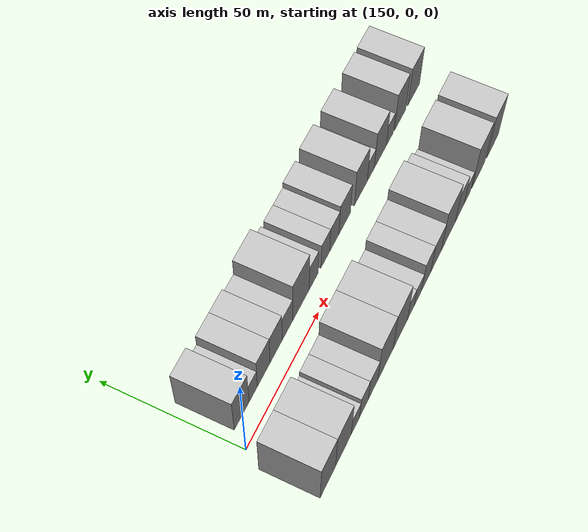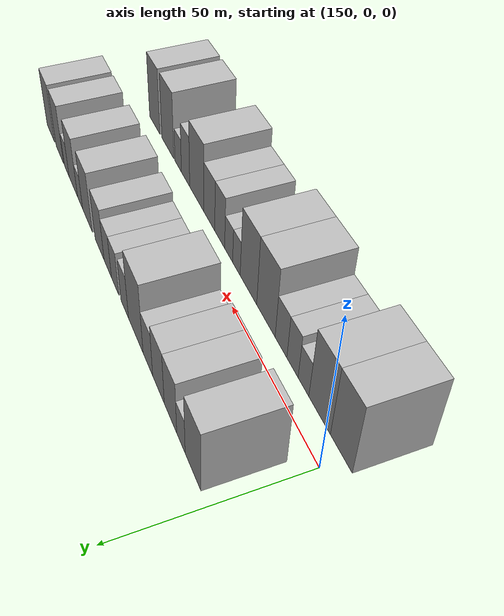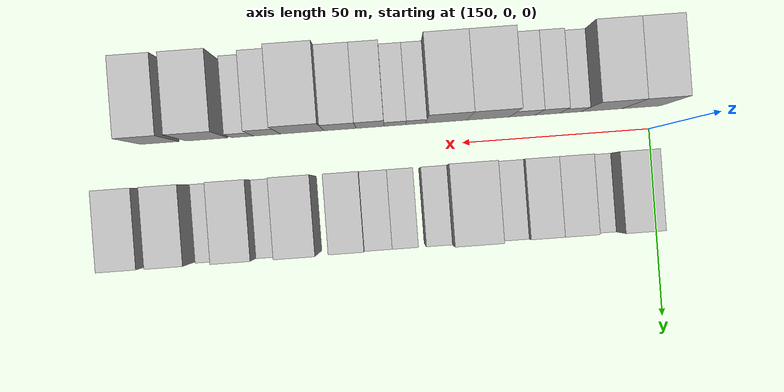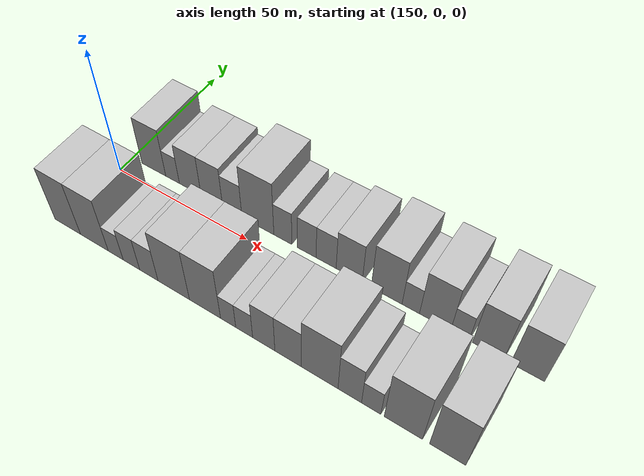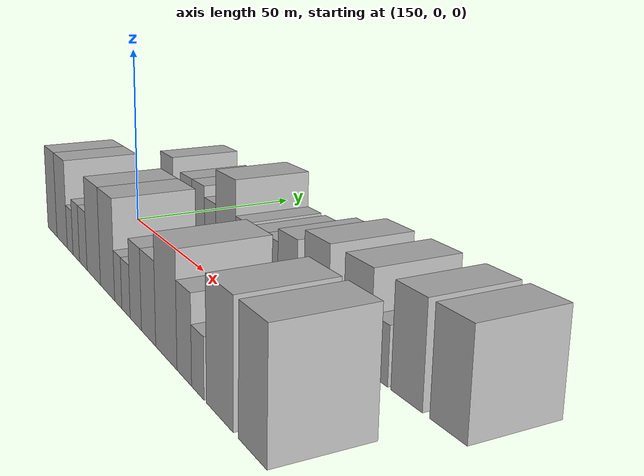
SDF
<sdf version="1.6">
 <world name="default">
  <model name="building_16">
   <static>1</static>
   <pose>158.8875 16.0000 0 0.000000 0.000000 1.570796</pose>
   <link name="link">
    <pose>0 0 10.50 0 0 0</pose>
    <collision name="collision"><geometry><box><size>20.0000 9.8371 21.0000</size></box></geometry></collision>
    <visual name="visual">
     <cast_shadows>0</cast_shadows>
     <geometry><box><size>20.0000 9.8371 21.0000</size></box></geometry>
     <material>
      <script>
       <uri>model://HANNAS_wall/materials/scripts</uri>
       <uri>model://HANNAS_wall/materials/textures</uri>
       <name>vrc/HANNAS_wall</name>
      </script>
     </material>
    </visual>
   </link>
  </model>
  <model name="building_17">
   <static>1</static>
   <pose>166.5775 16.0000 0 0.000000 0.000000 1.570796</pose>
   <link name="link">
    <pose>0 0 6.00 0 0 0</pose>
    <collision name="collision"><geometry><box><size>20.0000 5.5429 12.0000</size></box></geometry></collision>
    <visual name="visual">
     <cast_shadows>0</cast_shadows>
     <geometry><box><size>20.0000 5.5429 12.0000</size></box></geometry>
     <material>
      <script>
       <uri>model://HANNAS_wall/materials/scripts</uri>
       <uri>model://HANNAS_wall/materials/textures</uri>
       <name>vrc/HANNAS_wall</name>
      </script>
     </material>
    </visual>
   </link>
  </model>
  <model name="building_18">
   <static>1</static>
   <pose>173.6655 16.0000 0 0.000000 0.000000 1.570796</pose>
   <link name="link">
    <pose>0 0 9.00 0 0 0</pose>
    <collision name="collision"><geometry><box><size>20.0000 8.6331 18.0000</size></box></geometry></collision>
    <visual name="visual">
     <cast_shadows>0</cast_shadows>
     <geometry><box><size>20.0000 8.6331 18.0000</size></box></geometry>
     <material>
      <script>
       <uri>model://HANNAS_wall/materials/scripts</uri>
       <uri>model://HANNAS_wall/materials/textures</uri>
       <name>vrc/HANNAS_wall</name>
      </script>
     </material>
    </visual>
   </link>
  </model>
  <model name="building_19">
   <static>1</static>
   <pose>182.2064 16.0000 0 0.000000 0.000000 1.570796</pose>
   <link name="link">
    <pose>0 0 9.00 0 0 0</pose>
    <collision name="collision"><geometry><box><size>20.0000 8.4489 18.0000</size></box></geometry></collision>
    <visual name="visual">
     <cast_shadows>0</cast_shadows>
     <geometry><box><size>20.0000 8.4489 18.0000</size></box></geometry>
     <material>
      <script>
       <uri>model://HANNAS_wall/materials/scripts</uri>
       <uri>model://HANNAS_wall/materials/textures</uri>
       <name>vrc/HANNAS_wall</name>
      </script>
     </material>
    </visual>
   </link>
  </model>
  <model name="building_20">
   <static>1</static>
   <pose>190.1154 16.0000 0 0.000000 0.000000 1.570796</pose>
   <link name="link">
    <pose>0 0 7.50 0 0 0</pose>
    <collision name="collision"><geometry><box><size>20.0000 7.3691 15.0000</size></box></geometry></collision>
    <visual name="visual">
     <cast_shadows>0</cast_shadows>
     <geometry><box><size>20.0000 7.3691 15.0000</size></box></geometry>
     <material>
      <script>
       <uri>model://HANNAS_wall/materials/scripts</uri>
       <uri>model://HANNAS_wall/materials/textures</uri>
       <name>vrc/HANNAS_wall</name>
      </script>
     </material>
    </visual>
   </link>
  </model>
  <model name="building_21">
   <static>1</static>
   <pose>199.7422 16.0000 0 0.000000 0.000000 1.570796</pose>
   <link name="link">
    <pose>0 0 12.00 0 0 0</pose>
    <collision name="collision"><geometry><box><size>20.0000 11.8844 24.0000</size></box></geometry></collision>
    <visual name="visual">
     <cast_shadows>0</cast_shadows>
     <geometry><box><size>20.0000 11.8844 24.0000</size></box></geometry>
     <material>
      <script>
       <uri>model://HANNAS_wall/materials/scripts</uri>
       <uri>model://HANNAS_wall/materials/textures</uri>
       <name>vrc/HANNAS_wall</name>
      </script>
     </material>
    </visual>
   </link>
  </model>
  <model name="building_22">
   <static>1</static>
   <pose>208.9534 16.0000 0 0.000000 0.000000 1.570796</pose>
   <link name="link">
    <pose>0 0 7.50 0 0 0</pose>
    <collision name="collision"><geometry><box><size>20.0000 6.5379 15.0000</size></box></geometry></collision>
    <visual name="visual">
     <cast_shadows>0</cast_shadows>
     <geometry><box><size>20.0000 6.5379 15.0000</size></box></geometry>
     <material>
      <script>
       <uri>model://HANNAS_wall/materials/scripts</uri>
       <uri>model://HANNAS_wall/materials/textures</uri>
       <name>vrc/HANNAS_wall</name>
      </script>
     </material>
    </visual>
   </link>
  </model>
  <model name="building_23">
   <static>1</static>
   <pose>217.5202 16.0000 0 0.000000 0.000000 1.570796</pose>
   <link name="link">
    <pose>0 0 7.50 0 0 0</pose>
    <collision name="collision"><geometry><box><size>20.0000 6.5957 15.0000</size></box></geometry></collision>
    <visual name="visual">
     <cast_shadows>0</cast_shadows>
     <geometry><box><size>20.0000 6.5957 15.0000</size></box></geometry>
     <material>
      <script>
       <uri>model://HANNAS_wall/materials/scripts</uri>
       <uri>model://HANNAS_wall/materials/textures</uri>
       <name>vrc/HANNAS_wall</name>
      </script>
     </material>
    </visual>
   </link>
  </model>
  <model name="building_24">
   <static>1</static>
   <pose>224.3153 16.0000 0 0.000000 0.000000 1.570796</pose>
   <link name="link">
    <pose>0 0 7.50 0 0 0</pose>
    <collision name="collision"><geometry><box><size>20.0000 6.9945 15.0000</size></box></geometry></collision>
    <visual name="visual">
     <cast_shadows>0</cast_shadows>
     <geometry><box><size>20.0000 6.9945 15.0000</size></box></geometry>
     <material>
      <script>
       <uri>model://HANNAS_wall/materials/scripts</uri>
       <uri>model://HANNAS_wall/materials/textures</uri>
       <name>vrc/HANNAS_wall</name>
      </script>
     </material>
    </visual>
   </link>
  </model>
  <model name="building_25">
   <static>1</static>
   <pose>232.2512 16.0000 0 0.000000 0.000000 1.570796</pose>
   <link name="link">
    <pose>0 0 9.00 0 0 0</pose>
    <collision name="collision"><geometry><box><size>20.0000 8.8774 18.0000</size></box></geometry></collision>
    <visual name="visual">
     <cast_shadows>0</cast_shadows>
     <geometry><box><size>20.0000 8.8774 18.0000</size></box></geometry>
     <material>
      <script>
       <uri>model://HANNAS_wall/materials/scripts</uri>
       <uri>model://HANNAS_wall/materials/textures</uri>
       <name>vrc/HANNAS_wall</name>
      </script>
     </material>
    </visual>
   </link>
  </model>
  <model name="building_26">
   <static>1</static>
   <pose>244.7805 16.0000 0 0.000000 0.000000 1.570796</pose>
   <link name="link">
    <pose>0 0 10.50 0 0 0</pose>
    <collision name="collision"><geometry><box><size>20.0000 10.1812 21.0000</size></box></geometry></collision>
    <visual name="visual">
     <cast_shadows>0</cast_shadows>
     <geometry><box><size>20.0000 10.1812 21.0000</size></box></geometry>
     <material>
      <script>
       <uri>model://HANNAS_wall/materials/scripts</uri>
       <uri>model://HANNAS_wall/materials/textures</uri>
       <name>vrc/HANNAS_wall</name>
      </script>
     </material>
    </visual>
   </link>
  </model>
  <model name="building_27">
   <static>1</static>
   <pose>252.6764 16.0000 0 0.000000 0.000000 1.570796</pose>
   <link name="link">
    <pose>0 0 6.00 0 0 0</pose>
    <collision name="collision"><geometry><box><size>20.0000 5.6105 12.0000</size></box></geometry></collision>
    <visual name="visual">
     <cast_shadows>0</cast_shadows>
     <geometry><box><size>20.0000 5.6105 12.0000</size></box></geometry>
     <material>
      <script>
       <uri>model://HANNAS_wall/materials/scripts</uri>
       <uri>model://HANNAS_wall/materials/textures</uri>
       <name>vrc/HANNAS_wall</name>
      </script>
     </material>
    </visual>
   </link>
  </model>
  <model name="building_28">
   <static>1</static>
   <pose>260.3763 16.0000 0 0.000000 0.000000 1.570796</pose>
   <link name="link">
    <pose>0 0 10.50 0 0 0</pose>
    <collision name="collision"><geometry><box><size>20.0000 9.7892 21.0000</size></box></geometry></collision>
    <visual name="visual">
     <cast_shadows>0</cast_shadows>
     <geometry><box><size>20.0000 9.7892 21.0000</size></box></geometry>
     <material>
      <script>
       <uri>model://HANNAS_wall/materials/scripts</uri>
       <uri>model://HANNAS_wall/materials/textures</uri>
       <name>vrc/HANNAS_wall</name>
      </script>
     </material>
    </visual>
   </link>
  </model>
  <model name="building_29">
   <static>1</static>
   <pose>268.1109 16.0000 0 0.000000 0.000000 1.570796</pose>
   <link name="link">
    <pose>0 0 6.00 0 0 0</pose>
    <collision name="collision"><geometry><box><size>20.0000 5.6800 12.0000</size></box></geometry></collision>
    <visual name="visual">
     <cast_shadows>0</cast_shadows>
     <geometry><box><size>20.0000 5.6800 12.0000</size></box></geometry>
     <material>
      <script>
       <uri>model://HANNAS_wall/materials/scripts</uri>
       <uri>model://HANNAS_wall/materials/textures</uri>
       <name>vrc/HANNAS_wall</name>
      </script>
     </material>
    </visual>
   </link>
  </model>
  <model name="building_30">
   <static>1</static>
   <pose>276.6648 16.0000 0 0.000000 0.000000 1.570796</pose>
   <link name="link">
    <pose>0 0 10.50 0 0 0</pose>
    <collision name="collision"><geometry><box><size>20.0000 9.4278 21.0000</size></box></geometry></collision>
    <visual name="visual">
     <cast_shadows>0</cast_shadows>
     <geometry><box><size>20.0000 9.4278 21.0000</size></box></geometry>
     <material>
      <script>
       <uri>model://HANNAS_wall/materials/scripts</uri>
       <uri>model://HANNAS_wall/materials/textures</uri>
       <name>vrc/HANNAS_wall</name>
      </script>
     </material>
    </visual>
   </link>
  </model>
  <model name="building_31">
   <static>1</static>
   <pose>288.3045 16.0000 0 0.000000 0.000000 1.570796</pose>
   <link name="link">
    <pose>0 0 10.50 0 0 0</pose>
    <collision name="collision"><geometry><box><size>20.0000 9.8517 21.0000</size></box></geometry></collision>
    <visual name="visual">
     <cast_shadows>0</cast_shadows>
     <geometry><box><size>20.0000 9.8517 21.0000</size></box></geometry>
     <material>
      <script>
       <uri>model://HANNAS_wall/materials/scripts</uri>
       <uri>model://HANNAS_wall/materials/textures</uri>
       <name>vrc/HANNAS_wall</name>
      </script>
     </material>
    </visual>
   </link>
  </model>
  <model name="building_47">
   <static>1</static>
   <pose>151.5773 -16.0000 0 0.000000 0.000000 1.570796</pose>
   <link name="link">
    <pose>0 0 12.00 0 0 0</pose>
    <collision name="collision"><geometry><box><size>20.0000 10.4769 24.0000</size></box></geometry></collision>
    <visual name="visual">
     <cast_shadows>0</cast_shadows>
     <geometry><box><size>20.0000 10.4769 24.0000</size></box></geometry>
     <material>
      <script>
       <uri>model://HANNAS_wall/materials/scripts</uri>
       <uri>model://HANNAS_wall/materials/textures</uri>
       <name>vrc/HANNAS_wall</name>
      </script>
     </material>
    </visual>
   </link>
  </model>
  <model name="building_48">
   <static>1</static>
   <pose>162.3619 -16.0000 0 0.000000 0.000000 1.570796</pose>
   <link name="link">
    <pose>0 0 12.00 0 0 0</pose>
    <collision name="collision"><geometry><box><size>20.0000 11.0923 24.0000</size></box></geometry></collision>
    <visual name="visual">
     <cast_shadows>0</cast_shadows>
     <geometry><box><size>20.0000 11.0923 24.0000</size></box></geometry>
     <material>
      <script>
       <uri>model://HANNAS_wall/materials/scripts</uri>
       <uri>model://HANNAS_wall/materials/textures</uri>
       <name>vrc/HANNAS_wall</name>
      </script>
     </material>
    </visual>
   </link>
  </model>
  <model name="building_49">
   <static>1</static>
   <pose>170.8178 -16.0000 0 0.000000 0.000000 1.570796</pose>
   <link name="link">
    <pose>0 0 6.00 0 0 0</pose>
    <collision name="collision"><geometry><box><size>20.0000 5.8196 12.0000</size></box></geometry></collision>
    <visual name="visual">
     <cast_shadows>0</cast_shadows>
     <geometry><box><size>20.0000 5.8196 12.0000</size></box></geometry>
     <material>
      <script>
       <uri>model://HANNAS_wall/materials/scripts</uri>
       <uri>model://HANNAS_wall/materials/textures</uri>
       <name>vrc/HANNAS_wall</name>
      </script>
     </material>
    </visual>
   </link>
  </model>
  <model name="building_50">
   <static>1</static>
   <pose>176.8990 -16.0000 0 0.000000 0.000000 1.570796</pose>
   <link name="link">
    <pose>0 0 7.50 0 0 0</pose>
    <collision name="collision"><geometry><box><size>20.0000 6.3428 15.0000</size></box></geometry></collision>
    <visual name="visual">
     <cast_shadows>0</cast_shadows>
     <geometry><box><size>20.0000 6.3428 15.0000</size></box></geometry>
     <material>
      <script>
       <uri>model://HANNAS_wall/materials/scripts</uri>
       <uri>model://HANNAS_wall/materials/textures</uri>
       <name>vrc/HANNAS_wall</name>
      </script>
     </material>
    </visual>
   </link>
  </model>
  <model name="building_51">
   <static>1</static>
   <pose>183.5298 -16.0000 0 0.000000 0.000000 1.570796</pose>
   <link name="link">
    <pose>0 0 7.50 0 0 0</pose>
    <collision name="collision"><geometry><box><size>20.0000 6.9188 15.0000</size></box></geometry></collision>
    <visual name="visual">
     <cast_shadows>0</cast_shadows>
     <geometry><box><size>20.0000 6.9188 15.0000</size></box></geometry>
     <material>
      <script>
       <uri>model://HANNAS_wall/materials/scripts</uri>
       <uri>model://HANNAS_wall/materials/textures</uri>
       <name>vrc/HANNAS_wall</name>
      </script>
     </material>
    </visual>
   </link>
  </model>
  <model name="building_52">
   <static>1</static>
   <pose>192.7536 -16.0000 0 0.000000 0.000000 1.570796</pose>
   <link name="link">
    <pose>0 0 12.00 0 0 0</pose>
    <collision name="collision"><geometry><box><size>20.0000 11.5287 24.0000</size></box></geometry></collision>
    <visual name="visual">
     <cast_shadows>0</cast_shadows>
     <geometry><box><size>20.0000 11.5287 24.0000</size></box></geometry>
     <material>
      <script>
       <uri>model://HANNAS_wall/materials/scripts</uri>
       <uri>model://HANNAS_wall/materials/textures</uri>
       <name>vrc/HANNAS_wall</name>
      </script>
     </material>
    </visual>
   </link>
  </model>
  <model name="building_53">
   <static>1</static>
   <pose>204.0426 -16.0000 0 0.000000 0.000000 1.570796</pose>
   <link name="link">
    <pose>0 0 12.00 0 0 0</pose>
    <collision name="collision"><geometry><box><size>20.0000 11.0494 24.0000</size></box></geometry></collision>
    <visual name="visual">
     <cast_shadows>0</cast_shadows>
     <geometry><box><size>20.0000 11.0494 24.0000</size></box></geometry>
     <material>
      <script>
       <uri>model://HANNAS_wall/materials/scripts</uri>
       <uri>model://HANNAS_wall/materials/textures</uri>
       <name>vrc/HANNAS_wall</name>
      </script>
     </material>
    </visual>
   </link>
  </model>
  <model name="building_54">
   <static>1</static>
   <pose>212.2116 -16.0000 0 0.000000 0.000000 1.570796</pose>
   <link name="link">
    <pose>0 0 6.00 0 0 0</pose>
    <collision name="collision"><geometry><box><size>20.0000 5.2885 12.0000</size></box></geometry></collision>
    <visual name="visual">
     <cast_shadows>0</cast_shadows>
     <geometry><box><size>20.0000 5.2885 12.0000</size></box></geometry>
     <material>
      <script>
       <uri>model://HANNAS_wall/materials/scripts</uri>
       <uri>model://HANNAS_wall/materials/textures</uri>
       <name>vrc/HANNAS_wall</name>
      </script>
     </material>
    </visual>
   </link>
  </model>
  <model name="building_55">
   <static>1</static>
   <pose>217.7366 -16.0000 0 0.000000 0.000000 1.570796</pose>
   <link name="link">
    <pose>0 0 6.00 0 0 0</pose>
    <collision name="collision"><geometry><box><size>20.0000 5.7615 12.0000</size></box></geometry></collision>
    <visual name="visual">
     <cast_shadows>0</cast_shadows>
     <geometry><box><size>20.0000 5.7615 12.0000</size></box></geometry>
     <material>
      <script>
       <uri>model://HANNAS_wall/materials/scripts</uri>
       <uri>model://HANNAS_wall/materials/textures</uri>
       <name>vrc/HANNAS_wall</name>
      </script>
     </material>
    </visual>
   </link>
  </model>
  <model name="building_56">
   <static>1</static>
   <pose>224.3309 -16.0000 0 0.000000 0.000000 1.570796</pose>
   <link name="link">
    <pose>0 0 9.00 0 0 0</pose>
    <collision name="collision"><geometry><box><size>20.0000 7.4270 18.0000</size></box></geometry></collision>
    <visual name="visual">
     <cast_shadows>0</cast_shadows>
     <geometry><box><size>20.0000 7.4270 18.0000</size></box></geometry>
     <material>
      <script>
       <uri>model://HANNAS_wall/materials/scripts</uri>
       <uri>model://HANNAS_wall/materials/textures</uri>
       <name>vrc/HANNAS_wall</name>
      </script>
     </material>
    </visual>
   </link>
  </model>
  <model name="building_57">
   <static>1</static>
   <pose>232.3517 -16.0000 0 0.000000 0.000000 1.570796</pose>
   <link name="link">
    <pose>0 0 9.00 0 0 0</pose>
    <collision name="collision"><geometry><box><size>20.0000 8.6147 18.0000</size></box></geometry></collision>
    <visual name="visual">
     <cast_shadows>0</cast_shadows>
     <geometry><box><size>20.0000 8.6147 18.0000</size></box></geometry>
     <material>
      <script>
       <uri>model://HANNAS_wall/materials/scripts</uri>
       <uri>model://HANNAS_wall/materials/textures</uri>
       <name>vrc/HANNAS_wall</name>
      </script>
     </material>
    </visual>
   </link>
  </model>
  <model name="building_58">
   <static>1</static>
   <pose>242.4959 -16.0000 0 0.000000 0.000000 1.570796</pose>
   <link name="link">
    <pose>0 0 12.00 0 0 0</pose>
    <collision name="collision"><geometry><box><size>20.0000 11.6737 24.0000</size></box></geometry></collision>
    <visual name="visual">
     <cast_shadows>0</cast_shadows>
     <geometry><box><size>20.0000 11.6737 24.0000</size></box></geometry>
     <material>
      <script>
       <uri>model://HANNAS_wall/materials/scripts</uri>
       <uri>model://HANNAS_wall/materials/textures</uri>
       <name>vrc/HANNAS_wall</name>
      </script>
     </material>
    </visual>
   </link>
  </model>
  <model name="building_59">
   <static>1</static>
   <pose>251.9537 -16.0000 0 0.000000 0.000000 1.570796</pose>
   <link name="link">
    <pose>0 0 9.00 0 0 0</pose>
    <collision name="collision"><geometry><box><size>20.0000 7.2419 18.0000</size></box></geometry></collision>
    <visual name="visual">
     <cast_shadows>0</cast_shadows>
     <geometry><box><size>20.0000 7.2419 18.0000</size></box></geometry>
     <material>
      <script>
       <uri>model://HANNAS_wall/materials/scripts</uri>
       <uri>model://HANNAS_wall/materials/textures</uri>
       <name>vrc/HANNAS_wall</name>
      </script>
     </material>
    </visual>
   </link>
  </model>
  <model name="building_60">
   <static>1</static>
   <pose>258.4846 -16.0000 0 0.000000 0.000000 1.570796</pose>
   <link name="link">
    <pose>0 0 6.00 0 0 0</pose>
    <collision name="collision"><geometry><box><size>20.0000 5.8199 12.0000</size></box></geometry></collision>
    <visual name="visual">
     <cast_shadows>0</cast_shadows>
     <geometry><box><size>20.0000 5.8199 12.0000</size></box></geometry>
     <material>
      <script>
       <uri>model://HANNAS_wall/materials/scripts</uri>
       <uri>model://HANNAS_wall/materials/textures</uri>
       <name>vrc/HANNAS_wall</name>
      </script>
     </material>
    </visual>
   </link>
  </model>
  <model name="building_61">
   <static>1</static>
   <pose>268.0100 -16.0000 0 0.000000 0.000000 1.570796</pose>
   <link name="link">
    <pose>0 0 12.00 0 0 0</pose>
    <collision name="collision"><geometry><box><size>20.0000 11.2309 24.0000</size></box></geometry></collision>
    <visual name="visual">
     <cast_shadows>0</cast_shadows>
     <geometry><box><size>20.0000 11.2309 24.0000</size></box></geometry>
     <material>
      <script>
       <uri>model://HANNAS_wall/materials/scripts</uri>
       <uri>model://HANNAS_wall/materials/textures</uri>
       <name>vrc/HANNAS_wall</name>
      </script>
     </material>
    </visual>
   </link>
  </model>
  <model name="building_62">
   <static>1</static>
   <pose>280.7325 -16.0000 0 0.000000 0.000000 1.570796</pose>
   <link name="link">
    <pose>0 0 12.00 0 0 0</pose>
    <collision name="collision"><geometry><box><size>20.0000 10.2141 24.0000</size></box></geometry></collision>
    <visual name="visual">
     <cast_shadows>0</cast_shadows>
     <geometry><box><size>20.0000 10.2141 24.0000</size></box></geometry>
     <material>
      <script>
       <uri>model://HANNAS_wall/materials/scripts</uri>
       <uri>model://HANNAS_wall/materials/textures</uri>
       <name>vrc/HANNAS_wall</name>
      </script>
     </material>
    </visual>
   </link>
  </model>
 </world>
</sdf>
